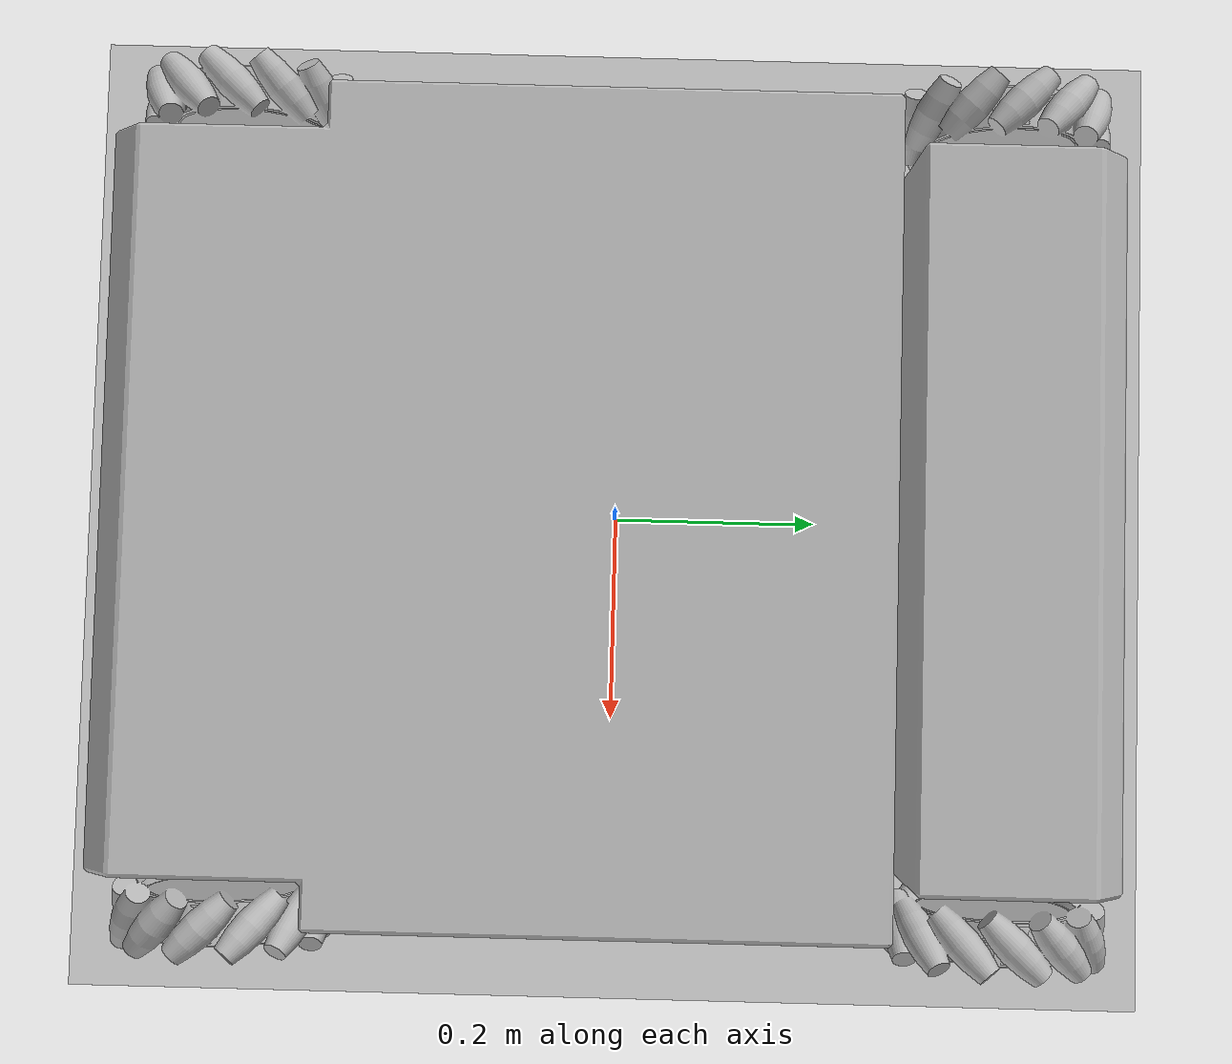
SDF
<?xml version="1.0" ?>
	<sdf version="1.5">
	<world name="default">
		<physics type="ode">
			<ode>
				<solver>
					<type>quick</type>
					<iters>200</iters>
					<sor>1.2</sor>
				</solver>
				<constraints>
					<cfm>0.0</cfm>
					<erp>0.2</erp>
					<contact_max_correcting_vel>0.01</contact_max_correcting_vel>
					<contact_surface_layer>0.0001</contact_surface_layer>
				</constraints>
			</ode>
			<real_time_update_rate>2000</real_time_update_rate>
			<max_step_size>0.0005</max_step_size>
		</physics>

		<!-- Słońce -->
		<include>
			<uri>model://sun</uri>
		</include>

		<!-- Podłoga -->
		<include>
			<uri>model://ground_plane</uri>
		</include>

		<!-- Platforma -->
		<model name="omnivelma">
			<include>
				<uri>model://omnivelma</uri>
			</include>
			<!-- Wtyczka sterująca -->
			<plugin name="omnivelma" filename="libomnivelma.so"/>
		</model>

		<!-- Platforma kinematyczna -->
		<model name="pseudovelma">
			<include>
				<uri>model://pseudovelma</uri>
			</include>]
			<plugin name="pseudovelma" filename="libpseudovelma.so"/>
		</model>
	</world>
</sdf>

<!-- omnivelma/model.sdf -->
<sdf version="1.5">
    <model name="omnivelma">
        <pose>0 0 0.101 0 0 0</pose>
        <static>false</static>
        <!--Baza całości-->
        <link name="base">
            <pose>0 -0.097 0.02 0 0 0</pose>
            <collision name="base_collision">
                <geometry>
                    <mesh>
                        <uri>model://omnivelma/meshes/collider/base.dae</uri>
                    </mesh>
                </geometry>
            </collision>
            <visual name="base_visual">
                <geometry>
                    <mesh>
                        <uri>model://omnivelma/meshes/visual/base.dae</uri>
                    </mesh>
                </geometry>
                <material>
                    <script>
                        <uri>model://omnivelma/materials/omnivelma.material</uri>
                        <name>omnivelma/base</name>
                    </script>
                </material>
            </visual>
        </link>
        <!-- Ruchomy przód -->
        <link name="front">
            <pose>0 0.367 0.02 0 0 0</pose>
            <collision name="front_collision">
                <geometry>
                    <mesh>
                        <uri>model://omnivelma/meshes/collider/front.dae</uri>
                    </mesh>
                </geometry>
            </collision>
            <visual name="front_visual">
                <geometry>
                    <mesh>
                        <uri>model://omnivelma/meshes/visual/front.dae</uri>
                    </mesh>
                </geometry>
                <material>
                    <script>
                        <uri>model://omnivelma/materials/omnivelma.material</uri>
                        <name>omnivelma/base</name>
                    </script>
                </material>
            </visual>
        </link>
        <!-- Koła wirtualne -->
        <link name="wheel_rr">
            <pose>0.38 -0.357 0 0 0 0</pose>
            <collision name="wheel_rr_collision">
                <geometry>
                    <sphere>
                        <radius>0.103</radius>
                    </sphere>
                </geometry>
                <surface>
                    <friction>
                        <ode>
                            <mu>1</mu>
                            <mu2>0</mu2>
                            <fdir1>0.707106781186548 0.707106781186548 0</fdir1>
                            <slip1>0</slip1>
                            <slip2>0</slip2>
                        </ode>
                        <bullet>
                            <friction>1</friction>
                            <friction2>0</friction2>
                            <fdir1>0.707106781186548 0.707106781186548 0</fdir1>
                            <rolling_friction>0</rolling_friction>
                        </bullet>
                    </friction>
                </surface>
            </collision>
            <visual name="wheel_rr_middle">
                <geometry>
                    <mesh>
                        <uri>model://omnivelma/meshes/visual/wheel.dae</uri>
                    </mesh>
                </geometry>
                <material>
                    <script>
                        <uri>model://omnivelma/materials/omnivelma.material</uri>
                        <name>omnivelma/wheels</name>
                    </script>
                </material>
            </visual>
            <visual name="wheel_rr_rollers">
                <geometry>
                    <mesh>
                        <uri>model://omnivelma/meshes/visual/wheel_l.dae</uri>
                    </mesh>
                </geometry>
                <material>
                    <script>
                        <uri>model://omnivelma/materials/omnivelma.material</uri>
                        <name>omnivelma/rollers</name>
                    </script>
                </material>
            </visual>
        </link>
        <link name="wheel_rl">
            <pose>-0.38 -0.357 0 0 0 0</pose>
            <collision name="wheel_rl_collision">
                <geometry>
                    <sphere>
                        <radius>0.103</radius>
                    </sphere>
                </geometry>
                <surface>
                    <friction>
                        <ode>
                            <mu>1</mu>
                            <mu2>0</mu2>
                            <fdir1>-0.707106781186548 0.707106781186548 0</fdir1>
                            <slip1>0</slip1>
                            <slip2>0</slip2>
                        </ode>
                        <bullet>
                            <friction>1</friction>
                            <friction2>0</friction2>
                            <fdir1>-0.707106781186548 0.707106781186548 0</fdir1>
                            <rolling_friction>0</rolling_friction>
                        </bullet>
                    </friction>
                </surface>
            </collision>
            <visual name="wheel_rl_middle">
                <geometry>
                    <mesh>
                        <uri>model://omnivelma/meshes/visual/wheel.dae</uri>
                    </mesh>
                </geometry>
                <material>
                    <script>
                        <uri>model://omnivelma/materials/omnivelma.material</uri>
                        <name>omnivelma/wheels</name>
                    </script>
                </material>
            </visual>
            <visual name="wheel_rl_rollers">
                <geometry>
                    <mesh>
                        <uri>model://omnivelma/meshes/visual/wheel_r.dae</uri>
                    </mesh>
                </geometry>
                <material>
                    <script>
                        <uri>model://omnivelma/materials/omnivelma.material</uri>
                        <name>omnivelma/rollers</name>
                    </script>
                </material>
            </visual>
        </link>
        <link name="wheel_fr">
            <pose>0.38 0.362 0 0 0 0</pose>
            <collision name="wheel_fr_collision">
                <geometry>
                    <sphere>
                        <radius>0.103</radius>
                    </sphere>
                </geometry>
                <surface>
                    <friction>
                        <ode>
                            <mu>1</mu>
                            <mu2>0</mu2>
                            <fdir1>0.707106781186548 -0.707106781186548 0</fdir1>
                            <slip1>0</slip1>
                            <slip2>0</slip2>
                        </ode>
                        <bullet>
                            <friction>1</friction>
                            <friction2>0</friction2>
                            <fdir1>0.707106781186548 -0.707106781186548 0</fdir1>
                            <rolling_friction>0</rolling_friction>
                        </bullet>
                    </friction>
                </surface>
            </collision>
            <visual name="wheel_fr_middle">
                <geometry>
                    <mesh>
                        <uri>model://omnivelma/meshes/visual/wheel.dae</uri>
                    </mesh>
                </geometry>
                <material>
                    <script>
                        <uri>model://omnivelma/materials/omnivelma.material</uri>
                        <name>omnivelma/wheels</name>
                    </script>
                </material>
            </visual>
            <visual name="wheel_fr_rollers">
                <geometry>
                    <mesh>
                        <uri>model://omnivelma/meshes/visual/wheel_r.dae</uri>
                    </mesh>
                </geometry>
                <material>
                    <script>
                        <uri>model://omnivelma/materials/omnivelma.material</uri>
                        <name>omnivelma/rollers</name>
                    </script>
                </material>
            </visual>
        </link>
        <link name="wheel_fl">
            <pose>-0.38 0.362 0 0 0 0</pose>
            <collision name="wheel_fl_collision">
                <geometry>
                    <sphere>
                        <radius>0.103</radius>
                    </sphere>
                </geometry>
                <surface>
                    <friction>
                        <ode>
                            <mu>1</mu>
                            <mu2>0</mu2>
                            <fdir1>-0.707106781186548 -0.707106781186548 0</fdir1>
                            <slip1>0</slip1>
                            <slip2>0</slip2>
                        </ode>
                        <bullet>
                            <friction>1</friction>
                            <friction2>0</friction2>
                            <fdir1>-0.707106781186548 -0.707106781186548 0</fdir1>
                            <rolling_friction>0</rolling_friction>
                        </bullet>
                    </friction>
                </surface>
            </collision>
            <visual name="wheel_fl_middle">
                <geometry>
                    <mesh>
                        <uri>model://omnivelma/meshes/visual/wheel.dae</uri>
                    </mesh>
                </geometry>
                <material>
                    <script>
                        <uri>model://omnivelma/materials/omnivelma.material</uri>
                        <name>omnivelma/wheels</name>
                    </script>
                </material>
            </visual>
            <visual name="wheel_fl_rollers">
                <geometry>
                    <mesh>
                        <uri>model://omnivelma/meshes/visual/wheel_l.dae</uri>
                    </mesh>
                </geometry>
                <material>
                    <script>
                        <uri>model://omnivelma/materials/omnivelma.material</uri>
                        <name>omnivelma/rollers</name>
                    </script>
                </material>
            </visual>
        </link>
        <!-- Środkowy przegub (zawias) -->
        <joint name="middle_joint" type="revolute">
            <parent>base</parent>
            <child>front</child>
            <!-- Pozycja względem dziecka -->
            <pose>0 -0.1 -0.02 0 0 0</pose>
            <axis>
                <xyz>0 1 0</xyz>
                <use_parent_model_frame>true</use_parent_model_frame>
            </axis>
        </joint>
        <!-- Przeguby kół (motory) -->
        <joint name="motor_rr" type="revolute">
            <parent>base</parent>
            <child>wheel_rr</child>
            <pose>-0.036 0 0 0 0 0</pose>
            <axis>
                <xyz>-1 0 0</xyz>
                <use_parent_model_frame>true</use_parent_model_frame>
            </axis>
        </joint>
        <joint name="motor_rl" type="revolute">
            <parent>base</parent>
            <child>wheel_rl</child>
            <pose>0.036 0 0 0 0 0</pose>
            <axis>
                <xyz>-1 0 0</xyz>
                <use_parent_model_frame>true</use_parent_model_frame>
            </axis>
        </joint>
        <joint name="motor_fr" type="revolute">
            <parent>front</parent>
            <child>wheel_fr</child>
            <pose>-0.036 0 0 0 0 0</pose>
            <axis>
                <xyz>-1 0 0</xyz>
                <use_parent_model_frame>true</use_parent_model_frame>
            </axis>
        </joint>
        <joint name="motor_fl" type="revolute">
            <parent>front</parent>
            <child>wheel_fl</child>
            <pose>0.036 0 0 0 0 0</pose>
            <axis>
                <xyz>-1 0 0</xyz>
                <use_parent_model_frame>true</use_parent_model_frame>
            </axis>
        </joint>
    </model>
    </sdf>

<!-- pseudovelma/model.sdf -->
<sdf version="1.5">
    <model name="pseudovelma">
        <pose>0 0 0.101 0 0 0</pose>
        <static>false</static>
        <!--Baza całości-->
        <link name="base">
            <pose>0 0 0 0 0 0</pose>
            <kinematic>true</kinematic>
            <gravity>false</gravity>
            <visual name="base_visual">
                <pose>0 -0.097 0.02 0 0 0</pose>
                <geometry>
                    <mesh>
                        <uri>model://omnivelma/meshes/visual/base.dae</uri>
                    </mesh>
                </geometry>
                <material>
                    <script>
                        <uri>model://omnivelma/materials/omnivelma.material</uri>
                        <name>omnivelma/base</name>
                    </script>
                </material>
            </visual>
            <!-- Przód -->
            <visual name="front_visual">
                <pose>0 0.367 0.02 0 0 0</pose>
                <geometry>
                    <mesh>
                        <uri>model://omnivelma/meshes/visual/front.dae</uri>
                    </mesh>
                </geometry>
                <material>
                    <script>
                        <uri>model://omnivelma/materials/omnivelma.material</uri>
                        <name>omnivelma/base</name>
                    </script>
                </material>
            </visual>

            <visual name="virtual_wheel_rr_middle">
                <pose>0.38 -0.357 0 0 0 0</pose>
                <geometry>
                    <mesh>
                        <uri>model://omnivelma/meshes/visual/wheel.dae</uri>
                    </mesh>
                </geometry>
                <material>
                    <script>
                        <uri>model://omnivelma/materials/omnivelma.material</uri>
                        <name>omnivelma/wheels</name>
                    </script>
                </material>
            </visual>
            <visual name="virtual_wheel_rr_rollers">
                <pose>0.38 -0.357 0 0 0 0</pose>
                <geometry>
                    <mesh>
                        <uri>model://omnivelma/meshes/visual/wheel_l.dae</uri>
                    </mesh>
                </geometry>
                <material>
                    <script>
                        <uri>model://omnivelma/materials/omnivelma.material</uri>
                        <name>omnivelma/rollers</name>
                    </script>
                </material>
            </visual>

            <visual name="virtual_wheel_rl_middle">
                <pose>-0.38 -0.357 0 0 0 0</pose>
                <geometry>
                    <mesh>
                        <uri>model://omnivelma/meshes/visual/wheel.dae</uri>
                    </mesh>
                </geometry>
                <material>
                    <script>
                        <uri>model://omnivelma/materials/omnivelma.material</uri>
                        <name>omnivelma/wheels</name>
                    </script>
                </material>
            </visual>
            <visual name="virtual_wheel_rl_rollers">
                <pose>-0.38 -0.357 0 0 0 0</pose>
                <geometry>
                    <mesh>
                        <uri>model://omnivelma/meshes/visual/wheel_r.dae</uri>
                    </mesh>
                </geometry>
                <material>
                    <script>
                        <uri>model://omnivelma/materials/omnivelma.material</uri>
                        <name>omnivelma/rollers</name>
                    </script>
                </material>
            </visual>

            <visual name="virtual_wheel_fr_middle">
                <pose>0.38 0.362 0 0 0 0</pose>
                <geometry>
                    <mesh>
                        <uri>model://omnivelma/meshes/visual/wheel.dae</uri>
                    </mesh>
                </geometry>
                <material>
                    <script>
                        <uri>model://omnivelma/materials/omnivelma.material</uri>
                        <name>omnivelma/wheels</name>
                    </script>
                </material>
            </visual>
            <visual name="virtual_wheel_fr_rollers">
                <pose>0.38 0.362 0 0 0 0</pose>
                <geometry>
                    <mesh>
                        <uri>model://omnivelma/meshes/visual/wheel_r.dae</uri>
                    </mesh>
                </geometry>
                <material>
                    <script>
                        <uri>model://omnivelma/materials/omnivelma.material</uri>
                        <name>omnivelma/rollers</name>
                    </script>
                </material>
            </visual>

            <visual name="virtual_wheel_fl_middle">
                <pose>-0.38 0.362 0 0 0 0</pose>
                <geometry>
                    <mesh>
                        <uri>model://omnivelma/meshes/visual/wheel.dae</uri>
                    </mesh>
                </geometry>
                <material>
                    <script>
                        <uri>model://omnivelma/materials/omnivelma.material</uri>
                        <name>omnivelma/wheels</name>
                    </script>
                </material>
            </visual>
            <visual name="virtual_wheel_fl_rollers">
                <pose>-0.38 0.362 0 0 0 0</pose>
                <geometry>
                    <mesh>
                        <uri>model://omnivelma/meshes/visual/wheel_l.dae</uri>
                    </mesh>
                </geometry>
                <material>
                    <script>
                        <uri>model://omnivelma/materials/omnivelma.material</uri>
                        <name>omnivelma/rollers</name>
                    </script>
                </material>
            </visual>
        </link>

    </model>
    </sdf>
